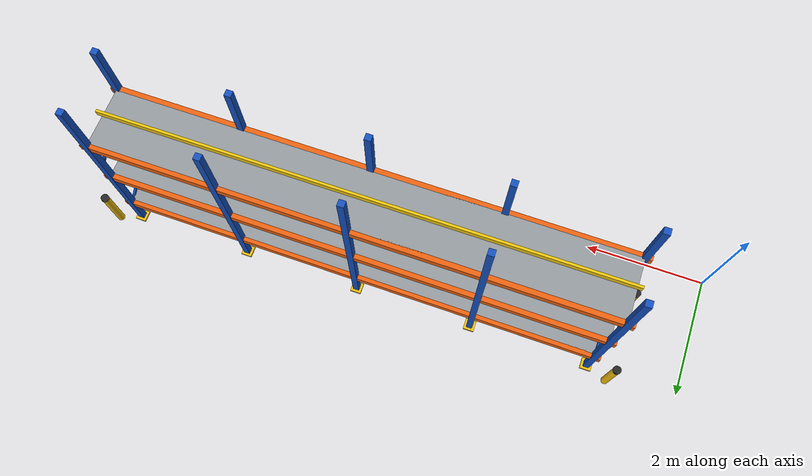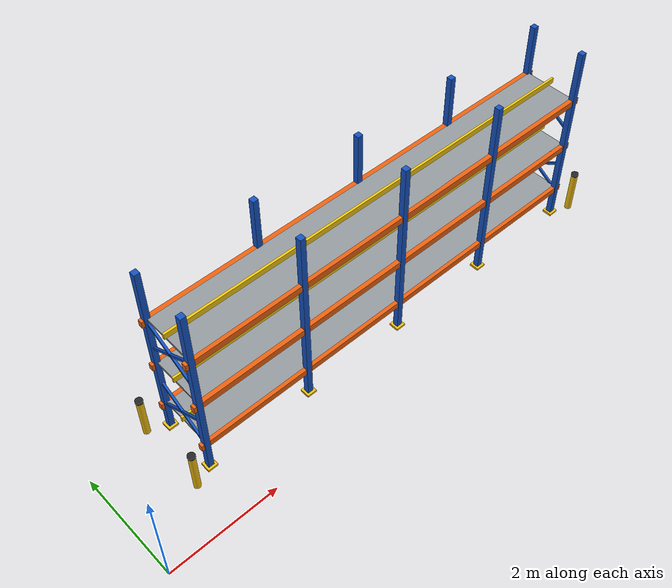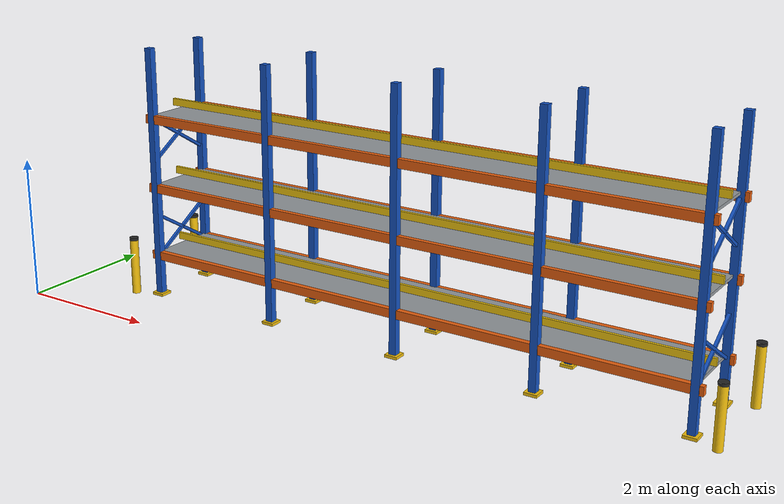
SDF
<sdf version="1.8">
 <world name="warehouse_3d">
  <model name="Rack_D_East">
   <static>true</static>
   <pose>5.50 1.50 0 0 0 0</pose>
   <link name="col_0_0">
    <pose>-4.0000 -0.5000 1.8000 0.0000 0.0000 0.0000</pose>
    <collision name="col_0_0_col"><geometry><box><size>0.1000 0.1000 3.6000</size></box></geometry></collision>
    <visual name="col_0_0_vis">
     <geometry><box><size>0.1000 0.1000 3.6000</size></box></geometry>
     <material>
      <ambient>0.052 0.208 0.488 1.00</ambient>
      <diffuse>0.080 0.320 0.750 1.00</diffuse>
      <specular>0.15 0.15 0.15 1.0</specular>
     </material>
    </visual>
   </link>
   <link name="foot_0_0">
    <pose>-4.0000 -0.5000 0.0200 0.0000 0.0000 0.0000</pose>
    <collision name="foot_0_0_col"><geometry><box><size>0.1800 0.1800 0.0400</size></box></geometry></collision>
    <visual name="foot_0_0_vis">
     <geometry><box><size>0.1800 0.1800 0.0400</size></box></geometry>
     <material>
      <ambient>0.617 0.488 0.033 1.00</ambient>
      <diffuse>0.950 0.750 0.050 1.00</diffuse>
      <specular>0.15 0.15 0.15 1.0</specular>
     </material>
    </visual>
   </link>
   <link name="col_0_1">
    <pose>-4.0000 0.5000 1.8000 0.0000 0.0000 0.0000</pose>
    <collision name="col_0_1_col"><geometry><box><size>0.1000 0.1000 3.6000</size></box></geometry></collision>
    <visual name="col_0_1_vis">
     <geometry><box><size>0.1000 0.1000 3.6000</size></box></geometry>
     <material>
      <ambient>0.052 0.208 0.488 1.00</ambient>
      <diffuse>0.080 0.320 0.750 1.00</diffuse>
      <specular>0.15 0.15 0.15 1.0</specular>
     </material>
    </visual>
   </link>
   <link name="foot_0_1">
    <pose>-4.0000 0.5000 0.0200 0.0000 0.0000 0.0000</pose>
    <collision name="foot_0_1_col"><geometry><box><size>0.1800 0.1800 0.0400</size></box></geometry></collision>
    <visual name="foot_0_1_vis">
     <geometry><box><size>0.1800 0.1800 0.0400</size></box></geometry>
     <material>
      <ambient>0.617 0.488 0.033 1.00</ambient>
      <diffuse>0.950 0.750 0.050 1.00</diffuse>
      <specular>0.15 0.15 0.15 1.0</specular>
     </material>
    </visual>
   </link>
   <link name="col_1_0">
    <pose>-2.0000 -0.5000 1.8000 0.0000 0.0000 0.0000</pose>
    <collision name="col_1_0_col"><geometry><box><size>0.1000 0.1000 3.6000</size></box></geometry></collision>
    <visual name="col_1_0_vis">
     <geometry><box><size>0.1000 0.1000 3.6000</size></box></geometry>
     <material>
      <ambient>0.052 0.208 0.488 1.00</ambient>
      <diffuse>0.080 0.320 0.750 1.00</diffuse>
      <specular>0.15 0.15 0.15 1.0</specular>
     </material>
    </visual>
   </link>
   <link name="foot_1_0">
    <pose>-2.0000 -0.5000 0.0200 0.0000 0.0000 0.0000</pose>
    <collision name="foot_1_0_col"><geometry><box><size>0.1800 0.1800 0.0400</size></box></geometry></collision>
    <visual name="foot_1_0_vis">
     <geometry><box><size>0.1800 0.1800 0.0400</size></box></geometry>
     <material>
      <ambient>0.617 0.488 0.033 1.00</ambient>
      <diffuse>0.950 0.750 0.050 1.00</diffuse>
      <specular>0.15 0.15 0.15 1.0</specular>
     </material>
    </visual>
   </link>
   <link name="col_1_1">
    <pose>-2.0000 0.5000 1.8000 0.0000 0.0000 0.0000</pose>
    <collision name="col_1_1_col"><geometry><box><size>0.1000 0.1000 3.6000</size></box></geometry></collision>
    <visual name="col_1_1_vis">
     <geometry><box><size>0.1000 0.1000 3.6000</size></box></geometry>
     <material>
      <ambient>0.052 0.208 0.488 1.00</ambient>
      <diffuse>0.080 0.320 0.750 1.00</diffuse>
      <specular>0.15 0.15 0.15 1.0</specular>
     </material>
    </visual>
   </link>
   <link name="foot_1_1">
    <pose>-2.0000 0.5000 0.0200 0.0000 0.0000 0.0000</pose>
    <collision name="foot_1_1_col"><geometry><box><size>0.1800 0.1800 0.0400</size></box></geometry></collision>
    <visual name="foot_1_1_vis">
     <geometry><box><size>0.1800 0.1800 0.0400</size></box></geometry>
     <material>
      <ambient>0.617 0.488 0.033 1.00</ambient>
      <diffuse>0.950 0.750 0.050 1.00</diffuse>
      <specular>0.15 0.15 0.15 1.0</specular>
     </material>
    </visual>
   </link>
   <link name="col_2_0">
    <pose>0.0000 -0.5000 1.8000 0.0000 0.0000 0.0000</pose>
    <collision name="col_2_0_col"><geometry><box><size>0.1000 0.1000 3.6000</size></box></geometry></collision>
    <visual name="col_2_0_vis">
     <geometry><box><size>0.1000 0.1000 3.6000</size></box></geometry>
     <material>
      <ambient>0.052 0.208 0.488 1.00</ambient>
      <diffuse>0.080 0.320 0.750 1.00</diffuse>
      <specular>0.15 0.15 0.15 1.0</specular>
     </material>
    </visual>
   </link>
   <link name="foot_2_0">
    <pose>0.0000 -0.5000 0.0200 0.0000 0.0000 0.0000</pose>
    <collision name="foot_2_0_col"><geometry><box><size>0.1800 0.1800 0.0400</size></box></geometry></collision>
    <visual name="foot_2_0_vis">
     <geometry><box><size>0.1800 0.1800 0.0400</size></box></geometry>
     <material>
      <ambient>0.617 0.488 0.033 1.00</ambient>
      <diffuse>0.950 0.750 0.050 1.00</diffuse>
      <specular>0.15 0.15 0.15 1.0</specular>
     </material>
    </visual>
   </link>
   <link name="col_2_1">
    <pose>0.0000 0.5000 1.8000 0.0000 0.0000 0.0000</pose>
    <collision name="col_2_1_col"><geometry><box><size>0.1000 0.1000 3.6000</size></box></geometry></collision>
    <visual name="col_2_1_vis">
     <geometry><box><size>0.1000 0.1000 3.6000</size></box></geometry>
     <material>
      <ambient>0.052 0.208 0.488 1.00</ambient>
      <diffuse>0.080 0.320 0.750 1.00</diffuse>
      <specular>0.15 0.15 0.15 1.0</specular>
     </material>
    </visual>
   </link>
   <link name="foot_2_1">
    <pose>0.0000 0.5000 0.0200 0.0000 0.0000 0.0000</pose>
    <collision name="foot_2_1_col"><geometry><box><size>0.1800 0.1800 0.0400</size></box></geometry></collision>
    <visual name="foot_2_1_vis">
     <geometry><box><size>0.1800 0.1800 0.0400</size></box></geometry>
     <material>
      <ambient>0.617 0.488 0.033 1.00</ambient>
      <diffuse>0.950 0.750 0.050 1.00</diffuse>
      <specular>0.15 0.15 0.15 1.0</specular>
     </material>
    </visual>
   </link>
   <link name="col_3_0">
    <pose>2.0000 -0.5000 1.8000 0.0000 0.0000 0.0000</pose>
    <collision name="col_3_0_col"><geometry><box><size>0.1000 0.1000 3.6000</size></box></geometry></collision>
    <visual name="col_3_0_vis">
     <geometry><box><size>0.1000 0.1000 3.6000</size></box></geometry>
     <material>
      <ambient>0.052 0.208 0.488 1.00</ambient>
      <diffuse>0.080 0.320 0.750 1.00</diffuse>
      <specular>0.15 0.15 0.15 1.0</specular>
     </material>
    </visual>
   </link>
   <link name="foot_3_0">
    <pose>2.0000 -0.5000 0.0200 0.0000 0.0000 0.0000</pose>
    <collision name="foot_3_0_col"><geometry><box><size>0.1800 0.1800 0.0400</size></box></geometry></collision>
    <visual name="foot_3_0_vis">
     <geometry><box><size>0.1800 0.1800 0.0400</size></box></geometry>
     <material>
      <ambient>0.617 0.488 0.033 1.00</ambient>
      <diffuse>0.950 0.750 0.050 1.00</diffuse>
      <specular>0.15 0.15 0.15 1.0</specular>
     </material>
    </visual>
   </link>
   <link name="col_3_1">
    <pose>2.0000 0.5000 1.8000 0.0000 0.0000 0.0000</pose>
    <collision name="col_3_1_col"><geometry><box><size>0.1000 0.1000 3.6000</size></box></geometry></collision>
    <visual name="col_3_1_vis">
     <geometry><box><size>0.1000 0.1000 3.6000</size></box></geometry>
     <material>
      <ambient>0.052 0.208 0.488 1.00</ambient>
      <diffuse>0.080 0.320 0.750 1.00</diffuse>
      <specular>0.15 0.15 0.15 1.0</specular>
     </material>
    </visual>
   </link>
   <link name="foot_3_1">
    <pose>2.0000 0.5000 0.0200 0.0000 0.0000 0.0000</pose>
    <collision name="foot_3_1_col"><geometry><box><size>0.1800 0.1800 0.0400</size></box></geometry></collision>
    <visual name="foot_3_1_vis">
     <geometry><box><size>0.1800 0.1800 0.0400</size></box></geometry>
     <material>
      <ambient>0.617 0.488 0.033 1.00</ambient>
      <diffuse>0.950 0.750 0.050 1.00</diffuse>
      <specular>0.15 0.15 0.15 1.0</specular>
     </material>
    </visual>
   </link>
   <link name="col_4_0">
    <pose>4.0000 -0.5000 1.8000 0.0000 0.0000 0.0000</pose>
    <collision name="col_4_0_col"><geometry><box><size>0.1000 0.1000 3.6000</size></box></geometry></collision>
    <visual name="col_4_0_vis">
     <geometry><box><size>0.1000 0.1000 3.6000</size></box></geometry>
     <material>
      <ambient>0.052 0.208 0.488 1.00</ambient>
      <diffuse>0.080 0.320 0.750 1.00</diffuse>
      <specular>0.15 0.15 0.15 1.0</specular>
     </material>
    </visual>
   </link>
   <link name="foot_4_0">
    <pose>4.0000 -0.5000 0.0200 0.0000 0.0000 0.0000</pose>
    <collision name="foot_4_0_col"><geometry><box><size>0.1800 0.1800 0.0400</size></box></geometry></collision>
    <visual name="foot_4_0_vis">
     <geometry><box><size>0.1800 0.1800 0.0400</size></box></geometry>
     <material>
      <ambient>0.617 0.488 0.033 1.00</ambient>
      <diffuse>0.950 0.750 0.050 1.00</diffuse>
      <specular>0.15 0.15 0.15 1.0</specular>
     </material>
    </visual>
   </link>
   <link name="col_4_1">
    <pose>4.0000 0.5000 1.8000 0.0000 0.0000 0.0000</pose>
    <collision name="col_4_1_col"><geometry><box><size>0.1000 0.1000 3.6000</size></box></geometry></collision>
    <visual name="col_4_1_vis">
     <geometry><box><size>0.1000 0.1000 3.6000</size></box></geometry>
     <material>
      <ambient>0.052 0.208 0.488 1.00</ambient>
      <diffuse>0.080 0.320 0.750 1.00</diffuse>
      <specular>0.15 0.15 0.15 1.0</specular>
     </material>
    </visual>
   </link>
   <link name="foot_4_1">
    <pose>4.0000 0.5000 0.0200 0.0000 0.0000 0.0000</pose>
    <collision name="foot_4_1_col"><geometry><box><size>0.1800 0.1800 0.0400</size></box></geometry></collision>
    <visual name="foot_4_1_vis">
     <geometry><box><size>0.1800 0.1800 0.0400</size></box></geometry>
     <material>
      <ambient>0.617 0.488 0.033 1.00</ambient>
      <diffuse>0.950 0.750 0.050 1.00</diffuse>
      <specular>0.15 0.15 0.15 1.0</specular>
     </material>
    </visual>
   </link>
   <link name="x_brace_low_1_w">
    <pose>-4.0000 0.0000 0.9000 0.5500 0.0000 0.0000</pose>
    <visual name="x_brace_low_1_w_vis">
     <geometry><box><size>0.0400 1.0500 0.0400</size></box></geometry>
     <material>
      <ambient>0.052 0.208 0.488 1.00</ambient>
      <diffuse>0.080 0.320 0.750 1.00</diffuse>
      <specular>0.15 0.15 0.15 1.0</specular>
     </material>
    </visual>
   </link>
   <link name="x_brace_low_2_w">
    <pose>-4.0000 0.0000 0.9000 -0.5500 0.0000 0.0000</pose>
    <visual name="x_brace_low_2_w_vis">
     <geometry><box><size>0.0400 1.0500 0.0400</size></box></geometry>
     <material>
      <ambient>0.052 0.208 0.488 1.00</ambient>
      <diffuse>0.080 0.320 0.750 1.00</diffuse>
      <specular>0.15 0.15 0.15 1.0</specular>
     </material>
    </visual>
   </link>
   <link name="x_brace_hi_1_w">
    <pose>-4.0000 0.0000 2.3000 0.5500 0.0000 0.0000</pose>
    <visual name="x_brace_hi_1_w_vis">
     <geometry><box><size>0.0400 1.0500 0.0400</size></box></geometry>
     <material>
      <ambient>0.052 0.208 0.488 1.00</ambient>
      <diffuse>0.080 0.320 0.750 1.00</diffuse>
      <specular>0.15 0.15 0.15 1.0</specular>
     </material>
    </visual>
   </link>
   <link name="x_brace_hi_2_w">
    <pose>-4.0000 0.0000 2.3000 -0.5500 0.0000 0.0000</pose>
    <visual name="x_brace_hi_2_w_vis">
     <geometry><box><size>0.0400 1.0500 0.0400</size></box></geometry>
     <material>
      <ambient>0.052 0.208 0.488 1.00</ambient>
      <diffuse>0.080 0.320 0.750 1.00</diffuse>
      <specular>0.15 0.15 0.15 1.0</specular>
     </material>
    </visual>
   </link>
   <link name="x_brace_low_1_e">
    <pose>4.0000 0.0000 0.9000 0.5500 0.0000 0.0000</pose>
    <visual name="x_brace_low_1_e_vis">
     <geometry><box><size>0.0400 1.0500 0.0400</size></box></geometry>
     <material>
      <ambient>0.052 0.208 0.488 1.00</ambient>
      <diffuse>0.080 0.320 0.750 1.00</diffuse>
      <specular>0.15 0.15 0.15 1.0</specular>
     </material>
    </visual>
   </link>
   <link name="x_brace_low_2_e">
    <pose>4.0000 0.0000 0.9000 -0.5500 0.0000 0.0000</pose>
    <visual name="x_brace_low_2_e_vis">
     <geometry><box><size>0.0400 1.0500 0.0400</size></box></geometry>
     <material>
      <ambient>0.052 0.208 0.488 1.00</ambient>
      <diffuse>0.080 0.320 0.750 1.00</diffuse>
      <specular>0.15 0.15 0.15 1.0</specular>
     </material>
    </visual>
   </link>
   <link name="x_brace_hi_1_e">
    <pose>4.0000 0.0000 2.3000 0.5500 0.0000 0.0000</pose>
    <visual name="x_brace_hi_1_e_vis">
     <geometry><box><size>0.0400 1.0500 0.0400</size></box></geometry>
     <material>
      <ambient>0.052 0.208 0.488 1.00</ambient>
      <diffuse>0.080 0.320 0.750 1.00</diffuse>
      <specular>0.15 0.15 0.15 1.0</specular>
     </material>
    </visual>
   </link>
   <link name="x_brace_hi_2_e">
    <pose>4.0000 0.0000 2.3000 -0.5500 0.0000 0.0000</pose>
    <visual name="x_brace_hi_2_e_vis">
     <geometry><box><size>0.0400 1.0500 0.0400</size></box></geometry>
     <material>
      <ambient>0.052 0.208 0.488 1.00</ambient>
      <diffuse>0.080 0.320 0.750 1.00</diffuse>
      <specular>0.15 0.15 0.15 1.0</specular>
     </material>
    </visual>
   </link>
   <link name="beam_front_0">
    <pose>0.0000 0.5000 0.6000 0.0000 0.0000 0.0000</pose>
    <collision name="beam_front_0_col">
     <geometry><box><size>8.2000 0.0800 0.1200</size></box></geometry>
    </collision>
    <visual name="beam_front_0_vis">
     <geometry><box><size>8.2000 0.0800 0.1200</size></box></geometry>
     <material>
      <ambient>0.598 0.247 0.039 1.00</ambient>
      <diffuse>0.920 0.380 0.060 1.00</diffuse>
      <specular>0.15 0.15 0.15 1.0</specular>
     </material>
    </visual>
   </link>
   <link name="beam_rear_0">
    <pose>0.0000 -0.5000 0.6000 0.0000 0.0000 0.0000</pose>
    <collision name="beam_rear_0_col">
     <geometry><box><size>8.2000 0.0800 0.1200</size></box></geometry>
    </collision>
    <visual name="beam_rear_0_vis">
     <geometry><box><size>8.2000 0.0800 0.1200</size></box></geometry>
     <material>
      <ambient>0.598 0.247 0.039 1.00</ambient>
      <diffuse>0.920 0.380 0.060 1.00</diffuse>
      <specular>0.15 0.15 0.15 1.0</specular>
     </material>
    </visual>
   </link>
   <link name="deck_0">
    <pose>0.0000 0.0000 0.6400 0.0000 0.0000 0.0000</pose>
    <collision name="deck_0_col"><geometry><box><size>8.0000 0.9400 0.0400</size></box></geometry></collision>
    <visual name="deck_0_vis">
     <geometry><box><size>8.0000 0.9400 0.0400</size></box></geometry>
     <material>
      <ambient>0.377 0.390 0.403 1.00</ambient>
      <diffuse>0.580 0.600 0.620 1.00</diffuse>
      <specular>0.15 0.15 0.15 1.0</specular>
     </material>
    </visual>
   </link>
   <link name="backstop_0">
    <pose>0.0000 0.0000 0.7500 0.0000 0.0000 0.0000</pose>
    <visual name="backstop_0_vis">
     <geometry><box><size>8.1000 0.0400 0.1000</size></box></geometry>
     <material>
      <ambient>0.617 0.507 0.033 1.00</ambient>
      <diffuse>0.950 0.780 0.050 1.00</diffuse>
      <specular>0.15 0.15 0.15 1.0</specular>
     </material>
    </visual>
   </link>
   <link name="beam_front_1">
    <pose>0.0000 0.5000 1.6000 0.0000 0.0000 0.0000</pose>
    <collision name="beam_front_1_col">
     <geometry><box><size>8.2000 0.0800 0.1200</size></box></geometry>
    </collision>
    <visual name="beam_front_1_vis">
     <geometry><box><size>8.2000 0.0800 0.1200</size></box></geometry>
     <material>
      <ambient>0.598 0.247 0.039 1.00</ambient>
      <diffuse>0.920 0.380 0.060 1.00</diffuse>
      <specular>0.15 0.15 0.15 1.0</specular>
     </material>
    </visual>
   </link>
   <link name="beam_rear_1">
    <pose>0.0000 -0.5000 1.6000 0.0000 0.0000 0.0000</pose>
    <collision name="beam_rear_1_col">
     <geometry><box><size>8.2000 0.0800 0.1200</size></box></geometry>
    </collision>
    <visual name="beam_rear_1_vis">
     <geometry><box><size>8.2000 0.0800 0.1200</size></box></geometry>
     <material>
      <ambient>0.598 0.247 0.039 1.00</ambient>
      <diffuse>0.920 0.380 0.060 1.00</diffuse>
      <specular>0.15 0.15 0.15 1.0</specular>
     </material>
    </visual>
   </link>
   <link name="deck_1">
    <pose>0.0000 0.0000 1.6400 0.0000 0.0000 0.0000</pose>
    <collision name="deck_1_col"><geometry><box><size>8.0000 0.9400 0.0400</size></box></geometry></collision>
    <visual name="deck_1_vis">
     <geometry><box><size>8.0000 0.9400 0.0400</size></box></geometry>
     <material>
      <ambient>0.377 0.390 0.403 1.00</ambient>
      <diffuse>0.580 0.600 0.620 1.00</diffuse>
      <specular>0.15 0.15 0.15 1.0</specular>
     </material>
    </visual>
   </link>
   <link name="backstop_1">
    <pose>0.0000 0.0000 1.7500 0.0000 0.0000 0.0000</pose>
    <visual name="backstop_1_vis">
     <geometry><box><size>8.1000 0.0400 0.1000</size></box></geometry>
     <material>
      <ambient>0.617 0.507 0.033 1.00</ambient>
      <diffuse>0.950 0.780 0.050 1.00</diffuse>
      <specular>0.15 0.15 0.15 1.0</specular>
     </material>
    </visual>
   </link>
   <link name="beam_front_2">
    <pose>0.0000 0.5000 2.6000 0.0000 0.0000 0.0000</pose>
    <collision name="beam_front_2_col">
     <geometry><box><size>8.2000 0.0800 0.1200</size></box></geometry>
    </collision>
    <visual name="beam_front_2_vis">
     <geometry><box><size>8.2000 0.0800 0.1200</size></box></geometry>
     <material>
      <ambient>0.598 0.247 0.039 1.00</ambient>
      <diffuse>0.920 0.380 0.060 1.00</diffuse>
      <specular>0.15 0.15 0.15 1.0</specular>
     </material>
    </visual>
   </link>
   <link name="beam_rear_2">
    <pose>0.0000 -0.5000 2.6000 0.0000 0.0000 0.0000</pose>
    <collision name="beam_rear_2_col">
     <geometry><box><size>8.2000 0.0800 0.1200</size></box></geometry>
    </collision>
    <visual name="beam_rear_2_vis">
     <geometry><box><size>8.2000 0.0800 0.1200</size></box></geometry>
     <material>
      <ambient>0.598 0.247 0.039 1.00</ambient>
      <diffuse>0.920 0.380 0.060 1.00</diffuse>
      <specular>0.15 0.15 0.15 1.0</specular>
     </material>
    </visual>
   </link>
   <link name="deck_2">
    <pose>0.0000 0.0000 2.6400 0.0000 0.0000 0.0000</pose>
    <collision name="deck_2_col"><geometry><box><size>8.0000 0.9400 0.0400</size></box></geometry></collision>
    <visual name="deck_2_vis">
     <geometry><box><size>8.0000 0.9400 0.0400</size></box></geometry>
     <material>
      <ambient>0.377 0.390 0.403 1.00</ambient>
      <diffuse>0.580 0.600 0.620 1.00</diffuse>
      <specular>0.15 0.15 0.15 1.0</specular>
     </material>
    </visual>
   </link>
   <link name="backstop_2">
    <pose>0.0000 0.0000 2.7500 0.0000 0.0000 0.0000</pose>
    <visual name="backstop_2_vis">
     <geometry><box><size>8.1000 0.0400 0.1000</size></box></geometry>
     <material>
      <ambient>0.617 0.507 0.033 1.00</ambient>
      <diffuse>0.950 0.780 0.050 1.00</diffuse>
      <specular>0.15 0.15 0.15 1.0</specular>
     </material>
    </visual>
   </link>
   <link name="bollard_0">
    <pose>-4.3500 -0.6500 0.4000 0.0000 0.0000 0.0000</pose>
    <collision name="bollard_0_col">
     <geometry><cylinder><radius>0.0600</radius><length>0.8000</length></cylinder></geometry>
    </collision>
    <visual name="bollard_0_vis">
     <geometry><cylinder><radius>0.0600</radius><length>0.8000</length></cylinder></geometry>
     <material>
      <ambient>0.617 0.488 0.033 1.00</ambient>
      <diffuse>0.950 0.750 0.050 1.00</diffuse>
      <specular>0.2 0.2 0.2 1.0</specular>
     </material>
    </visual>
   </link>
   <link name="bollard_cap_0">
    <pose>-4.3500 -0.6500 0.8200 0.0000 0.0000 0.0000</pose>
    <collision name="bollard_cap_0_col">
     <geometry><cylinder><radius>0.0650</radius><length>0.0400</length></cylinder></geometry>
    </collision>
    <visual name="bollard_cap_0_vis">
     <geometry><cylinder><radius>0.0650</radius><length>0.0400</length></cylinder></geometry>
     <material>
      <ambient>0.098 0.098 0.098 1.00</ambient>
      <diffuse>0.150 0.150 0.150 1.00</diffuse>
      <specular>0.2 0.2 0.2 1.0</specular>
     </material>
    </visual>
   </link>
   <link name="bollard_1">
    <pose>-4.3500 0.6500 0.4000 0.0000 0.0000 0.0000</pose>
    <collision name="bollard_1_col">
     <geometry><cylinder><radius>0.0600</radius><length>0.8000</length></cylinder></geometry>
    </collision>
    <visual name="bollard_1_vis">
     <geometry><cylinder><radius>0.0600</radius><length>0.8000</length></cylinder></geometry>
     <material>
      <ambient>0.617 0.488 0.033 1.00</ambient>
      <diffuse>0.950 0.750 0.050 1.00</diffuse>
      <specular>0.2 0.2 0.2 1.0</specular>
     </material>
    </visual>
   </link>
   <link name="bollard_cap_1">
    <pose>-4.3500 0.6500 0.8200 0.0000 0.0000 0.0000</pose>
    <collision name="bollard_cap_1_col">
     <geometry><cylinder><radius>0.0650</radius><length>0.0400</length></cylinder></geometry>
    </collision>
    <visual name="bollard_cap_1_vis">
     <geometry><cylinder><radius>0.0650</radius><length>0.0400</length></cylinder></geometry>
     <material>
      <ambient>0.098 0.098 0.098 1.00</ambient>
      <diffuse>0.150 0.150 0.150 1.00</diffuse>
      <specular>0.2 0.2 0.2 1.0</specular>
     </material>
    </visual>
   </link>
   <link name="bollard_2">
    <pose>4.3500 -0.6500 0.4000 0.0000 0.0000 0.0000</pose>
    <collision name="bollard_2_col">
     <geometry><cylinder><radius>0.0600</radius><length>0.8000</length></cylinder></geometry>
    </collision>
    <visual name="bollard_2_vis">
     <geometry><cylinder><radius>0.0600</radius><length>0.8000</length></cylinder></geometry>
     <material>
      <ambient>0.617 0.488 0.033 1.00</ambient>
      <diffuse>0.950 0.750 0.050 1.00</diffuse>
      <specular>0.2 0.2 0.2 1.0</specular>
     </material>
    </visual>
   </link>
   <link name="bollard_cap_2">
    <pose>4.3500 -0.6500 0.8200 0.0000 0.0000 0.0000</pose>
    <collision name="bollard_cap_2_col">
     <geometry><cylinder><radius>0.0650</radius><length>0.0400</length></cylinder></geometry>
    </collision>
    <visual name="bollard_cap_2_vis">
     <geometry><cylinder><radius>0.0650</radius><length>0.0400</length></cylinder></geometry>
     <material>
      <ambient>0.098 0.098 0.098 1.00</ambient>
      <diffuse>0.150 0.150 0.150 1.00</diffuse>
      <specular>0.2 0.2 0.2 1.0</specular>
     </material>
    </visual>
   </link>
   <link name="bollard_3">
    <pose>4.3500 0.6500 0.4000 0.0000 0.0000 0.0000</pose>
    <collision name="bollard_3_col">
     <geometry><cylinder><radius>0.0600</radius><length>0.8000</length></cylinder></geometry>
    </collision>
    <visual name="bollard_3_vis">
     <geometry><cylinder><radius>0.0600</radius><length>0.8000</length></cylinder></geometry>
     <material>
      <ambient>0.617 0.488 0.033 1.00</ambient>
      <diffuse>0.950 0.750 0.050 1.00</diffuse>
      <specular>0.2 0.2 0.2 1.0</specular>
     </material>
    </visual>
   </link>
   <link name="bollard_cap_3">
    <pose>4.3500 0.6500 0.8200 0.0000 0.0000 0.0000</pose>
    <collision name="bollard_cap_3_col">
     <geometry><cylinder><radius>0.0650</radius><length>0.0400</length></cylinder></geometry>
    </collision>
    <visual name="bollard_cap_3_vis">
     <geometry><cylinder><radius>0.0650</radius><length>0.0400</length></cylinder></geometry>
     <material>
      <ambient>0.098 0.098 0.098 1.00</ambient>
      <diffuse>0.150 0.150 0.150 1.00</diffuse>
      <specular>0.2 0.2 0.2 1.0</specular>
     </material>
    </visual>
   </link>
  </model>
 </world>
</sdf>
